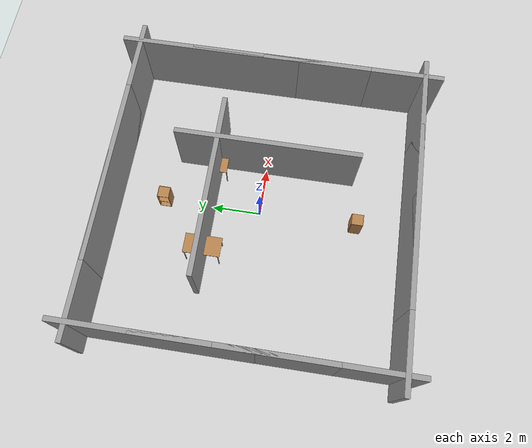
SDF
<sdf version="1.5">
 <world name="office_world">
  <include><uri>model://ground_plane</uri></include>
  <physics name="default_physics" default="0" type="ode">
   <gravity>0 0 -9.8066</gravity>
   <ode>
    <solver><type>quick</type><iters>150</iters><sor>1.3</sor></solver>
    <constraints>
     <cfm>0.00001</cfm>
     <erp>0.2</erp>
     <contact_max_correcting_vel>1000</contact_max_correcting_vel>
     <contact_surface_layer>0.01</contact_surface_layer>
    </constraints>
   </ode>
   <max_step_size>0.004</max_step_size>
   <real_time_factor>1</real_time_factor>
   <real_time_update_rate>250</real_time_update_rate>
  </physics>
  <scene><ambient>0.6 0.6 0.6 1</ambient><background>0.9 0.9 0.9 1</background><shadows>true</shadows></scene>
  <include><uri>model://table</uri><name>office_table_1</name><pose>2 2 0 0 0 0</pose></include>
  <include><uri>model://table</uri><name>office_table_2</name><pose>-2 2 0 0 0 1.57</pose></include>
  <include><uri>model://cabinet</uri><name>cabinet_north</name><pose>0 4 0 0 0 0</pose></include>
  <include><uri>model://cabinet</uri><name>cabinet_south</name><pose>0 -4 0 0 0 3.14</pose></include>
  <include><uri>model://grey_wall</uri><name>east_wall_1</name><pose>6 -3 0 0 0 1.57</pose></include>
  <include><uri>model://grey_wall</uri><name>east_wall_2</name><pose>6 0 0 0 0 1.57</pose></include>
  <include><uri>model://grey_wall</uri><name>east_wall_3</name><pose>6 3 0 0 0 1.57</pose></include>
  <include><uri>model://grey_wall</uri><name>west_wall_1</name><pose>-6 -3 0 0 0 1.57</pose></include>
  <include><uri>model://grey_wall</uri><name>west_wall_2</name><pose>-6 0 0 0 0 1.57</pose></include>
  <include><uri>model://grey_wall</uri><name>west_wall_3</name><pose>-6 3 0 0 0 1.57</pose></include>
  <include><uri>model://grey_wall</uri><name>north_wall_1</name><pose>-3 6 0 0 0 0</pose></include>
  <include><uri>model://grey_wall</uri><name>north_wall_2</name><pose>0 6 0 0 0 0</pose></include>
  <include><uri>model://grey_wall</uri><name>north_wall_3</name><pose>3 6 0 0 0 0</pose></include>
  <include><uri>model://grey_wall</uri><name>south_wall_1</name><pose>-3 -6 0 0 0 0</pose></include>
  <include><uri>model://grey_wall</uri><name>south_wall_2</name><pose>0 -6 0 0 0 0</pose></include>
  <include><uri>model://grey_wall</uri><name>south_wall_3</name><pose>3 -6 0 0 0 0</pose></include>
  <include><uri>model://grey_wall</uri><name>partition_wall_1</name><pose>0 2 0 0 0 0</pose></include>
  <include><uri>model://grey_wall</uri><name>partition_wall_2</name><pose>2 0 0 0 0 1.57</pose></include>
  <light name="office_light_1" type="point">
   <pose>2 2 3 0 0 0</pose>
   <diffuse>0.7 0.7 0.7 1</diffuse>
   <specular>0.2 0.2 0.2 1</specular>
   <attenuation>
    <range>10</range>
    <constant>0.5</constant>
    <linear>0.02</linear>
    <quadratic>0.002</quadratic>
   </attenuation>
  </light>
 </world>
</sdf>

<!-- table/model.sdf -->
<sdf version="1.5">
  <model name="table">
    <static>true</static>
    <link name="link">
      <collision name="surface">
        <pose>0 0 1.0 0 0 0</pose>
        <geometry>
          <box>
            <size>1.5 0.8 0.03</size>
          </box>
        </geometry>
        <surface>
          <friction>
            <ode>
              <mu>0.6</mu>
              <mu2>0.6</mu2>
            </ode>
          </friction>
        </surface>
      </collision>
      <visual name="visual1">
        <pose>0 0 1.0 0 0 0</pose>
        <geometry>
          <box>
            <size>1.5 0.8 0.03</size>
          </box>
        </geometry>
        <material>
          <script>
            <uri>model://media/materials/scripts/gazebo.material</uri>
            <name>Gazebo/Wood</name>
          </script>
        </material>
      </visual>
      <collision name="front_left_leg">
        <pose>0.68 0.38 0.5 0 0 0</pose>
        <geometry>
          <cylinder>
            <radius>0.02</radius>
            <length>1.0</length>
          </cylinder>
        </geometry>
      </collision>
      <visual name="front_left_leg">
        <pose>0.68 0.38 0.5 0 0 0</pose>
        <geometry>
          <cylinder>
            <radius>0.02</radius>
            <length>1.0</length>
          </cylinder>
        </geometry>
        <material>
          <script>
            <uri>model://media/materials/scripts/gazebo.material</uri>
            <name>Gazebo/Grey</name>
          </script>
        </material>
      </visual>
      <collision name="front_right_leg">
        <pose>0.68 -0.38 0.5 0 0 0</pose>
        <geometry>
          <cylinder>
            <radius>0.02</radius>
            <length>1.0</length>
          </cylinder>
        </geometry>
      </collision>
      <visual name="front_right_leg">
        <pose>0.68 -0.38 0.5 0 0 0</pose>
        <geometry>
          <cylinder>
            <radius>0.02</radius>
            <length>1.0</length>
          </cylinder>
        </geometry>
        <material>
          <script>
            <uri>model://media/materials/scripts/gazebo.material</uri>
            <name>Gazebo/Grey</name>
          </script>
        </material>
      </visual>
      <collision name="back_right_leg">
        <pose>-0.68 -0.38 0.5 0 0 0</pose>
        <geometry>
          <cylinder>
            <radius>0.02</radius>
            <length>1.0</length>
          </cylinder>
        </geometry>
      </collision>
      <visual name="back_right_leg">
        <pose>-0.68 -0.38 0.5 0 0 0</pose>
        <geometry>
          <cylinder>
            <radius>0.02</radius>
            <length>1.0</length>
          </cylinder>
        </geometry>
        <material>
          <script>
            <uri>model://media/materials/scripts/gazebo.material</uri>
            <name>Gazebo/Grey</name>
          </script>
        </material>
      </visual>
      <collision name="back_left_leg">
        <pose>-0.68 0.38 0.5 0 0 0</pose>
        <geometry>
          <cylinder>
            <radius>0.02</radius>
            <length>1.0</length>
          </cylinder>
        </geometry>
      </collision>
      <visual name="back_left_leg">
        <pose>-0.68 0.38 0.5 0 0 0</pose>
        <geometry>
          <cylinder>
            <radius>0.02</radius>
            <length>1.0</length>
          </cylinder>
        </geometry>
        <material>
          <script>
            <uri>model://media/materials/scripts/gazebo.material</uri>
            <name>Gazebo/Grey</name>
          </script>
        </material>
      </visual>
    </link>
  </model>
</sdf>

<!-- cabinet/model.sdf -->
<sdf version="1.5">
  <model name="cabinet">
    <static>true</static>
    <link name="cabinet_bottom_plate">
      <inertial>
        <pose>0 0 -1 0 0 0</pose>
        <inertia>
          <ixx>2.050000</ixx>
          <ixy>0</ixy>
          <ixz>0</ixz>
          <iyy>2.050000</iyy>
          <iyz>0</iyz>
          <izz>2.050000</izz>
        </inertia>
        <mass>25.000000</mass>
      </inertial>
      <collision name="cabinet_bottom_plate_geom">
        <pose>0 0 0.010000 0 0 0</pose>
        <geometry>
          <box>
            <size>0.450000 0.450000 0.020000</size>
          </box>
        </geometry>
      </collision>
      <visual name="cabinet_bottom_plate_geom_visual">
        <pose>0 0 0.010000 0 0 0</pose>
        <geometry>
          <box>
            <size>0.450000 0.450000 0.020000</size>
          </box>
        </geometry>
        <material>
          <script>
            <uri>model://media/materials/scripts/gazebo.material</uri>
            <name>Gazebo/Wood</name>
          </script>
        </material>
      </visual>
      <collision name="cabinet_bottom_plate_geom_cabinet_back_plate">
        <pose>0.235000 0 0.510000 0 0 0</pose>
        <geometry>
          <box>
            <size>0.020000 0.450000 1.020000</size>
          </box>
        </geometry>
      </collision>
      <visual name="cabinet_bottom_plate_geom_cabinet_back_plate_visual">
        <pose>0.235000 0 0.510000 0 0 0</pose>
        <geometry>
          <box>
            <size>0.020000 0.450000 1.020000</size>
          </box>
        </geometry>
        <material>
          <script>
            <uri>model://media/materials/scripts/gazebo.material</uri>
            <name>Gazebo/Wood</name>
          </script>
        </material>
      </visual>
      <collision name="cabinet_bottom_plate_geom_cabinet_left_plate">
        <pose>0 0.235000 0.510000 0 0 0</pose>
        <geometry>
          <box>
            <size>0.450000 0.020000 1.020000</size>
          </box>
        </geometry>
      </collision>
      <visual name="cabinet_bottom_plate_geom_cabinet_left_plate_visual">
        <pose>0 0.235000 0.510000 0 0 0</pose>
        <geometry>
          <box>
            <size>0.450000 0.020000 1.020000</size>
          </box>
        </geometry>
        <material>
          <script>
            <uri>model://media/materials/scripts/gazebo.material</uri>
            <name>Gazebo/Wood</name>
          </script>
        </material>
      </visual>
      <collision name="cabinet_bottom_plate_geom_cabinet_middle_plate">
        <pose>0 0 0.510000 0 0 0</pose>
        <geometry>
          <box>
            <size>0.450000 0.450000 0.020000</size>
          </box>
        </geometry>
      </collision>
      <visual name="cabinet_bottom_plate_geom_cabinet_middle_plate_visual">
        <pose>0 0 0.510000 0 0 0</pose>
        <geometry>
          <box>
            <size>0.450000 0.450000 0.020000</size>
          </box>
        </geometry>
        <material>
          <script>
            <uri>model://media/materials/scripts/gazebo.material</uri>
            <name>Gazebo/Wood</name>
          </script>
        </material>
      </visual>
      <collision name="cabinet_bottom_plate_geom_cabinet_right_plate">
        <pose>0 -0.235000 0.510000 0 0 0</pose>
        <geometry>
          <box>
            <size>0.450000 0.020000 1.020000</size>
          </box>
        </geometry>
      </collision>
      <visual name="cabinet_bottom_plate_geom_cabinet_right_plate_visual">
        <pose>0 -0.235000 0.510000 0 0 0</pose>
        <geometry>
          <box>
            <size>0.450000 0.020000 1.020000</size>
          </box>
        </geometry>
        <material>
          <script>
            <uri>model://media/materials/scripts/gazebo.material</uri>
            <name>Gazebo/Wood</name>
          </script>
        </material>
      </visual>
      <collision name="cabinet_bottom_plate_geom_cabinet_top_plate">
        <pose>0 0 1.010000 0 0 0</pose>
        <geometry>
          <box>
            <size>0.450000 0.450000 0.020000</size>
          </box>
        </geometry>
      </collision>
      <visual name="cabinet_bottom_plate_geom_cabinet_top_plate_visual">
        <pose>0 0 1.010000 0 0 0</pose>
        <geometry>
          <box>
            <size>0.450000 0.450000 0.020000</size>
          </box>
        </geometry>
        <material>
          <script>
            <uri>model://media/materials/scripts/gazebo.material</uri>
            <name>Gazebo/Wood</name>
          </script>
        </material>
      </visual>
    </link>
  </model>
</sdf>

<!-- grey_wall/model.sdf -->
<sdf version="1.5">
  <model name="grey_wall">
    <static>true</static>
    <link name="link">
      <pose>0 0 1.4 0 0 0</pose>
      <collision name="collision">
        <geometry>
          <box>
            <size>7.5 0.2 2.8</size>
          </box>
        </geometry>
      </collision>
      <visual name="visual">
        <cast_shadows>false</cast_shadows>
        <geometry>
          <box>
            <size>7.5 0.2 2.8</size>
          </box>
        </geometry>
        <material>
          <script>
            <uri>model://../model_source/models/grey_wall/materials/scripts</uri>
            <uri>model://../model_source/models/grey_wall/materials/textures</uri>
            <name>vrc/grey_wall</name>
          </script>
        </material>
      </visual>
    </link>
  </model>
</sdf>
